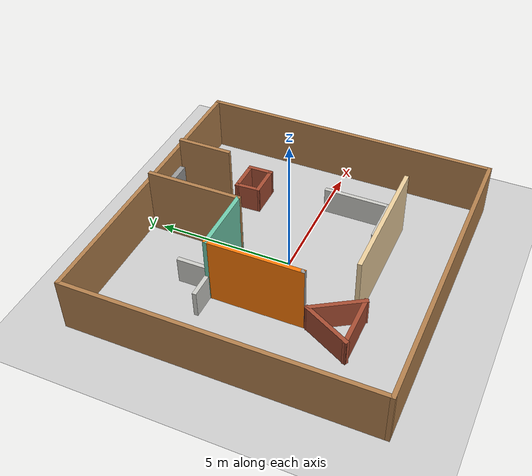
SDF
<sdf version="1.7">
 <world name="default">
  <light name="sun" type="directional">
   <pose>0 0 10 0 -0 0</pose>
   <diffuse>0.8 0.8 0.8 1</diffuse>
   <specular>0.1 0.1 0.1 1</specular>
   <attenuation>
    <range>1000</range>
    <constant>0.9</constant>
    <linear>0.01</linear>
    <quadratic>0.001</quadratic>
   </attenuation>
   <direction>-0.5 0.5 -1</direction>
   <spot><inner_angle>0</inner_angle><outer_angle>0</outer_angle><falloff>0</falloff></spot>
  </light>
  <model name="ground_plane">
   <static>1</static>
   <link name="link">
    <collision name="collision">
     <geometry><plane><normal>0 0 1</normal><size>100 100</size></plane></geometry>
     <surface><friction><ode><mu>100</mu><mu2>50</mu2></ode></friction></surface>
    </collision>
    <visual name="visual">
     <cast_shadows>0</cast_shadows>
     <geometry><plane><normal>0 0 1</normal><size>100 100</size></plane></geometry>
     <material>
      <script><uri>file://media/materials/scripts/gazebo.material</uri><name>Gazebo/Grey</name></script>
     </material>
    </visual>
   </link>
  </model>
  <gravity>0 0 -9.8</gravity>
  <magnetic_field>6e-06 2.3e-05 -4.2e-05</magnetic_field>
  <atmosphere type="adiabatic"/>
  <physics name="default_physics" default="0" type="ode">
   <max_step_size>0.001</max_step_size>
   <real_time_factor>1</real_time_factor>
   <real_time_update_rate>1000</real_time_update_rate>
  </physics>
  <scene><ambient>0.4 0.4 0.4 1</ambient><background>0.7 0.7 0.7 1</background><shadows>1</shadows></scene>
  <spherical_coordinates>
   <surface_model>EARTH_WGS84</surface_model>
   <latitude_deg>0</latitude_deg>
   <longitude_deg>0</longitude_deg>
   <elevation>0</elevation>
   <heading_deg>0</heading_deg>
  </spherical_coordinates>
  <model name="box">
   <link name="Wall_11">
    <pose>-2.152 1.857 0 0 -0 0</pose>
    <visual name="Wall_11_Visual">
     <pose>0 0 0.5 0 -0 0</pose>
     <geometry><box><size>2.5 0.15 1</size></box></geometry>
     <material>
      <script><uri>file://media/materials/scripts/gazebo.material</uri><name>Gazebo/CeilingTiled</name></script>
      <ambient>1 1 1 1</ambient>
      <diffuse>1 1 1 1</diffuse>
      <specular>0 0 0 1</specular>
      <emissive>0 0 0 1</emissive>
     </material>
     <meta><layer>0</layer></meta>
    </visual>
    <collision name="Wall_11_Collision">
     <pose>0 0 0.5 0 -0 0</pose>
     <geometry><box><size>2.5 0.15 1</size></box></geometry>
     <surface>
      <friction>
       <ode><mu>1</mu><mu2>1</mu2><fdir1>0 0 0</fdir1><slip1>0</slip1><slip2>0</slip2></ode>
       <torsional>
        <coefficient>1</coefficient>
        <patch_radius>0</patch_radius>
        <surface_radius>0</surface_radius>
        <use_patch_radius>1</use_patch_radius>
        <ode><slip>0</slip></ode>
       </torsional>
      </friction>
      <bounce><restitution_coefficient>0</restitution_coefficient><threshold>1e+06</threshold></bounce>
      <contact>
       <collide_without_contact>0</collide_without_contact>
       <collide_without_contact_bitmask>1</collide_without_contact_bitmask>
       <collide_bitmask>1</collide_bitmask>
       <ode>
        <soft_cfm>0</soft_cfm>
        <soft_erp>0.2</soft_erp>
        <kp>1e+13</kp>
        <kd>1</kd>
        <max_vel>0.01</max_vel>
        <min_depth>0</min_depth>
       </ode>
       <bullet>
        <split_impulse>1</split_impulse>
        <split_impulse_penetration_threshold>-0.01</split_impulse_penetration_threshold>
        <soft_cfm>0</soft_cfm>
        <soft_erp>0.2</soft_erp>
        <kp>1e+13</kp>
        <kd>1</kd>
       </bullet>
      </contact>
     </surface>
    </collision>
   </link>
   <link name="Wall_13">
    <pose>-2.155 1.764 0 0 0 -1.5708</pose>
    <visual name="Wall_13_Visual">
     <pose>0 0 0.5 0 -0 0</pose>
     <geometry><box><size>2.75 0.15 1</size></box></geometry>
     <material>
      <script><uri>file://media/materials/scripts/gazebo.material</uri><name>Gazebo/CeilingTiled</name></script>
      <ambient>1 1 1 1</ambient>
      <diffuse>1 1 1 1</diffuse>
      <specular>0 0 0 1</specular>
      <emissive>0 0 0 1</emissive>
     </material>
     <meta><layer>0</layer></meta>
    </visual>
    <collision name="Wall_13_Collision">
     <pose>0 0 0.5 0 -0 0</pose>
     <geometry><box><size>2.75 0.15 1</size></box></geometry>
     <surface>
      <friction>
       <ode><mu>1</mu><mu2>1</mu2><fdir1>0 0 0</fdir1><slip1>0</slip1><slip2>0</slip2></ode>
       <torsional>
        <coefficient>1</coefficient>
        <patch_radius>0</patch_radius>
        <surface_radius>0</surface_radius>
        <use_patch_radius>1</use_patch_radius>
        <ode><slip>0</slip></ode>
       </torsional>
      </friction>
      <bounce><restitution_coefficient>0</restitution_coefficient><threshold>1e+06</threshold></bounce>
      <contact>
       <collide_without_contact>0</collide_without_contact>
       <collide_without_contact_bitmask>1</collide_without_contact_bitmask>
       <collide_bitmask>1</collide_bitmask>
       <ode>
        <soft_cfm>0</soft_cfm>
        <soft_erp>0.2</soft_erp>
        <kp>1e+13</kp>
        <kd>1</kd>
        <max_vel>0.01</max_vel>
        <min_depth>0</min_depth>
       </ode>
       <bullet>
        <split_impulse>1</split_impulse>
        <split_impulse_penetration_threshold>-0.01</split_impulse_penetration_threshold>
        <soft_cfm>0</soft_cfm>
        <soft_erp>0.2</soft_erp>
        <kp>1e+13</kp>
        <kd>1</kd>
       </bullet>
      </contact>
     </surface>
    </collision>
   </link>
   <link name="Wall_15">
    <pose>2.724 3.029 0 0 -0 0</pose>
    <visual name="Wall_15_Visual">
     <pose>0 0 0.5 0 -0 0</pose>
     <geometry><box><size>1.2678 0.15 1</size></box></geometry>
     <material>
      <script><uri>file://media/materials/scripts/gazebo.material</uri><name>Gazebo/Bricks</name></script>
      <ambient>1 1 1 1</ambient>
      <diffuse>1 1 1 1</diffuse>
      <specular>0.2 0.2 0.2 1</specular>
      <emissive>0 0 0 1</emissive>
     </material>
     <meta><layer>0</layer></meta>
    </visual>
    <collision name="Wall_15_Collision">
     <pose>0 0 0.5 0 -0 0</pose>
     <geometry><box><size>1.2678 0.15 1</size></box></geometry>
     <surface>
      <friction>
       <ode><mu>1</mu><mu2>1</mu2><fdir1>0 0 0</fdir1><slip1>0</slip1><slip2>0</slip2></ode>
       <torsional>
        <coefficient>1</coefficient>
        <patch_radius>0</patch_radius>
        <surface_radius>0</surface_radius>
        <use_patch_radius>1</use_patch_radius>
        <ode><slip>0</slip></ode>
       </torsional>
      </friction>
      <bounce><restitution_coefficient>0</restitution_coefficient><threshold>1e+06</threshold></bounce>
      <contact>
       <collide_without_contact>0</collide_without_contact>
       <collide_without_contact_bitmask>1</collide_without_contact_bitmask>
       <collide_bitmask>1</collide_bitmask>
       <ode>
        <soft_cfm>0</soft_cfm>
        <soft_erp>0.2</soft_erp>
        <kp>1e+13</kp>
        <kd>1</kd>
        <max_vel>0.01</max_vel>
        <min_depth>0</min_depth>
       </ode>
       <bullet>
        <split_impulse>1</split_impulse>
        <split_impulse_penetration_threshold>-0.01</split_impulse_penetration_threshold>
        <soft_cfm>0</soft_cfm>
        <soft_erp>0.2</soft_erp>
        <kp>1e+13</kp>
        <kd>1</kd>
       </bullet>
      </contact>
     </surface>
    </collision>
   </link>
   <link name="Wall_16">
    <pose>3.2915 2.6215 0 0 0 -1.54994</pose>
    <visual name="Wall_16_Visual">
     <pose>0 0 0.5 0 -0 0</pose>
     <geometry><box><size>0.965005 0.15 1</size></box></geometry>
     <material>
      <script><uri>file://media/materials/scripts/gazebo.material</uri><name>Gazebo/Bricks</name></script>
      <ambient>1 1 1 1</ambient>
      <diffuse>1 1 1 1</diffuse>
      <specular>0.2 0.2 0.2 1</specular>
      <emissive>0 0 0 1</emissive>
     </material>
     <meta><layer>0</layer></meta>
    </visual>
    <collision name="Wall_16_Collision">
     <pose>0 0 0.5 0 -0 0</pose>
     <geometry><box><size>0.965005 0.15 1</size></box></geometry>
     <surface>
      <friction>
       <ode><mu>1</mu><mu2>1</mu2><fdir1>0 0 0</fdir1><slip1>0</slip1><slip2>0</slip2></ode>
       <torsional>
        <coefficient>1</coefficient>
        <patch_radius>0</patch_radius>
        <surface_radius>0</surface_radius>
        <use_patch_radius>1</use_patch_radius>
        <ode><slip>0</slip></ode>
       </torsional>
      </friction>
      <bounce><restitution_coefficient>0</restitution_coefficient><threshold>1e+06</threshold></bounce>
      <contact>
       <collide_without_contact>0</collide_without_contact>
       <collide_without_contact_bitmask>1</collide_without_contact_bitmask>
       <collide_bitmask>1</collide_bitmask>
       <ode>
        <soft_cfm>0</soft_cfm>
        <soft_erp>0.2</soft_erp>
        <kp>1e+13</kp>
        <kd>1</kd>
        <max_vel>0.01</max_vel>
        <min_depth>0</min_depth>
       </ode>
       <bullet>
        <split_impulse>1</split_impulse>
        <split_impulse_penetration_threshold>-0.01</split_impulse_penetration_threshold>
        <soft_cfm>0</soft_cfm>
        <soft_erp>0.2</soft_erp>
        <kp>1e+13</kp>
        <kd>1</kd>
       </bullet>
      </contact>
     </surface>
    </collision>
   </link>
   <link name="Wall_17">
    <pose>2.75 2.214 0 0 -0 3.14159</pose>
    <visual name="Wall_17_Visual">
     <pose>0 0 0.5 0 -0 0</pose>
     <geometry><box><size>1.25 0.15 1</size></box></geometry>
     <material>
      <script><uri>file://media/materials/scripts/gazebo.material</uri><name>Gazebo/Bricks</name></script>
      <ambient>1 1 1 1</ambient>
      <diffuse>1 1 1 1</diffuse>
      <specular>0.2 0.2 0.2 1</specular>
      <emissive>0 0 0 1</emissive>
     </material>
     <meta><layer>0</layer></meta>
    </visual>
    <collision name="Wall_17_Collision">
     <pose>0 0 0.5 0 -0 0</pose>
     <geometry><box><size>1.25 0.15 1</size></box></geometry>
     <surface>
      <friction>
       <ode><mu>1</mu><mu2>1</mu2><fdir1>0 0 0</fdir1><slip1>0</slip1><slip2>0</slip2></ode>
       <torsional>
        <coefficient>1</coefficient>
        <patch_radius>0</patch_radius>
        <surface_radius>0</surface_radius>
        <use_patch_radius>1</use_patch_radius>
        <ode><slip>0</slip></ode>
       </torsional>
      </friction>
      <bounce><restitution_coefficient>0</restitution_coefficient><threshold>1e+06</threshold></bounce>
      <contact>
       <collide_without_contact>0</collide_without_contact>
       <collide_without_contact_bitmask>1</collide_without_contact_bitmask>
       <collide_bitmask>1</collide_bitmask>
       <ode>
        <soft_cfm>0</soft_cfm>
        <soft_erp>0.2</soft_erp>
        <kp>1e+13</kp>
        <kd>1</kd>
        <max_vel>0.01</max_vel>
        <min_depth>0</min_depth>
       </ode>
       <bullet>
        <split_impulse>1</split_impulse>
        <split_impulse_penetration_threshold>-0.01</split_impulse_penetration_threshold>
        <soft_cfm>0</soft_cfm>
        <soft_erp>0.2</soft_erp>
        <kp>1e+13</kp>
        <kd>1</kd>
       </bullet>
      </contact>
     </surface>
    </collision>
   </link>
   <link name="Wall_18">
    <pose>2.1825 2.6215 0 0 -0 1.61372</pose>
    <visual name="Wall_18_Visual">
     <pose>0 0 0.5 0 -0 0</pose>
     <geometry><box><size>0.965005 0.15 1</size></box></geometry>
     <material>
      <script><uri>file://media/materials/scripts/gazebo.material</uri><name>Gazebo/Bricks</name></script>
      <ambient>1 1 1 1</ambient>
      <diffuse>1 1 1 1</diffuse>
      <specular>0.2 0.2 0.2 1</specular>
      <emissive>0 0 0 1</emissive>
     </material>
     <meta><layer>0</layer></meta>
    </visual>
    <collision name="Wall_18_Collision">
     <pose>0 0 0.5 0 -0 0</pose>
     <geometry><box><size>0.965005 0.15 1</size></box></geometry>
     <surface>
      <friction>
       <ode><mu>1</mu><mu2>1</mu2><fdir1>0 0 0</fdir1><slip1>0</slip1><slip2>0</slip2></ode>
       <torsional>
        <coefficient>1</coefficient>
        <patch_radius>0</patch_radius>
        <surface_radius>0</surface_radius>
        <use_patch_radius>1</use_patch_radius>
        <ode><slip>0</slip></ode>
       </torsional>
      </friction>
      <bounce><restitution_coefficient>0</restitution_coefficient><threshold>1e+06</threshold></bounce>
      <contact>
       <collide_without_contact>0</collide_without_contact>
       <collide_without_contact_bitmask>1</collide_without_contact_bitmask>
       <collide_bitmask>1</collide_bitmask>
       <ode>
        <soft_cfm>0</soft_cfm>
        <soft_erp>0.2</soft_erp>
        <kp>1e+13</kp>
        <kd>1</kd>
        <max_vel>0.01</max_vel>
        <min_depth>0</min_depth>
       </ode>
       <bullet>
        <split_impulse>1</split_impulse>
        <split_impulse_penetration_threshold>-0.01</split_impulse_penetration_threshold>
        <soft_cfm>0</soft_cfm>
        <soft_erp>0.2</soft_erp>
        <kp>1e+13</kp>
        <kd>1</kd>
       </bullet>
      </contact>
     </surface>
    </collision>
   </link>
   <link name="Wall_24">
    <pose>-2.89576 -2.49088 0 0 -0 1.09459</pose>
    <visual name="Wall_24_Visual">
     <pose>0 0 0.5 0 -0 0</pose>
     <geometry><box><size>1.97704 0.15 1</size></box></geometry>
     <material>
      <script><uri>file://media/materials/scripts/gazebo.material</uri><name>Gazebo/Bricks</name></script>
      <ambient>1 1 1 1</ambient>
      <diffuse>1 1 1 1</diffuse>
      <specular>0.2 0.2 0.2 1</specular>
      <emissive>0 0 0 1</emissive>
     </material>
     <meta><layer>0</layer></meta>
    </visual>
    <collision name="Wall_24_Collision">
     <pose>0 0 0.5 0 -0 0</pose>
     <geometry><box><size>1.97704 0.15 1</size></box></geometry>
     <surface>
      <friction>
       <ode><mu>1</mu><mu2>1</mu2><fdir1>0 0 0</fdir1><slip1>0</slip1><slip2>0</slip2></ode>
       <torsional>
        <coefficient>1</coefficient>
        <patch_radius>0</patch_radius>
        <surface_radius>0</surface_radius>
        <use_patch_radius>1</use_patch_radius>
        <ode><slip>0</slip></ode>
       </torsional>
      </friction>
      <bounce><restitution_coefficient>0</restitution_coefficient><threshold>1e+06</threshold></bounce>
      <contact>
       <collide_without_contact>0</collide_without_contact>
       <collide_without_contact_bitmask>1</collide_without_contact_bitmask>
       <collide_bitmask>1</collide_bitmask>
       <ode>
        <soft_cfm>0</soft_cfm>
        <soft_erp>0.2</soft_erp>
        <kp>1e+13</kp>
        <kd>1</kd>
        <max_vel>0.01</max_vel>
        <min_depth>0</min_depth>
       </ode>
       <bullet>
        <split_impulse>1</split_impulse>
        <split_impulse_penetration_threshold>-0.01</split_impulse_penetration_threshold>
        <soft_cfm>0</soft_cfm>
        <soft_erp>0.2</soft_erp>
        <kp>1e+13</kp>
        <kd>1</kd>
       </bullet>
      </contact>
     </surface>
    </collision>
   </link>
   <link name="Wall_25">
    <pose>-1.97077 -2.49088 0 0 0 -1.01325</pose>
    <visual name="Wall_25_Visual">
     <pose>0 0 0.5 0 -0 0</pose>
     <geometry><box><size>2.06356 0.15 1</size></box></geometry>
     <material>
      <script><uri>file://media/materials/scripts/gazebo.material</uri><name>Gazebo/Bricks</name></script>
      <ambient>1 1 1 1</ambient>
      <diffuse>1 1 1 1</diffuse>
      <specular>0.2 0.2 0.2 1</specular>
      <emissive>0 0 0 1</emissive>
     </material>
     <meta><layer>0</layer></meta>
    </visual>
    <collision name="Wall_25_Collision">
     <pose>0 0 0.5 0 -0 0</pose>
     <geometry><box><size>2.06356 0.15 1</size></box></geometry>
     <surface>
      <friction>
       <ode><mu>1</mu><mu2>1</mu2><fdir1>0 0 0</fdir1><slip1>0</slip1><slip2>0</slip2></ode>
       <torsional>
        <coefficient>1</coefficient>
        <patch_radius>0</patch_radius>
        <surface_radius>0</surface_radius>
        <use_patch_radius>1</use_patch_radius>
        <ode><slip>0</slip></ode>
       </torsional>
      </friction>
      <bounce><restitution_coefficient>0</restitution_coefficient><threshold>1e+06</threshold></bounce>
      <contact>
       <collide_without_contact>0</collide_without_contact>
       <collide_without_contact_bitmask>1</collide_without_contact_bitmask>
       <collide_bitmask>1</collide_bitmask>
       <ode>
        <soft_cfm>0</soft_cfm>
        <soft_erp>0.2</soft_erp>
        <kp>1e+13</kp>
        <kd>1</kd>
        <max_vel>0.01</max_vel>
        <min_depth>0</min_depth>
       </ode>
       <bullet>
        <split_impulse>1</split_impulse>
        <split_impulse_penetration_threshold>-0.01</split_impulse_penetration_threshold>
        <soft_cfm>0</soft_cfm>
        <soft_erp>0.2</soft_erp>
        <kp>1e+13</kp>
        <kd>1</kd>
       </bullet>
      </contact>
     </surface>
    </collision>
   </link>
   <link name="Wall_26">
    <pose>-2.38953 -3.28527 0 0 -0 3.14159</pose>
    <visual name="Wall_26_Visual">
     <pose>0 0 0.5 0 -0 0</pose>
     <geometry><box><size>2 0.15 1</size></box></geometry>
     <material>
      <script><uri>file://media/materials/scripts/gazebo.material</uri><name>Gazebo/Bricks</name></script>
      <ambient>1 1 1 1</ambient>
      <diffuse>1 1 1 1</diffuse>
      <specular>0.2 0.2 0.2 1</specular>
      <emissive>0 0 0 1</emissive>
     </material>
     <meta><layer>0</layer></meta>
    </visual>
    <collision name="Wall_26_Collision">
     <pose>0 0 0.5 0 -0 0</pose>
     <geometry><box><size>2 0.15 1</size></box></geometry>
     <surface>
      <friction>
       <ode><mu>1</mu><mu2>1</mu2><fdir1>0 0 0</fdir1><slip1>0</slip1><slip2>0</slip2></ode>
       <torsional>
        <coefficient>1</coefficient>
        <patch_radius>0</patch_radius>
        <surface_radius>0</surface_radius>
        <use_patch_radius>1</use_patch_radius>
        <ode><slip>0</slip></ode>
       </torsional>
      </friction>
      <bounce><restitution_coefficient>0</restitution_coefficient><threshold>1e+06</threshold></bounce>
      <contact>
       <collide_without_contact>0</collide_without_contact>
       <collide_without_contact_bitmask>1</collide_without_contact_bitmask>
       <collide_bitmask>1</collide_bitmask>
       <ode>
        <soft_cfm>0</soft_cfm>
        <soft_erp>0.2</soft_erp>
        <kp>1e+13</kp>
        <kd>1</kd>
        <max_vel>0.01</max_vel>
        <min_depth>0</min_depth>
       </ode>
       <bullet>
        <split_impulse>1</split_impulse>
        <split_impulse_penetration_threshold>-0.01</split_impulse_penetration_threshold>
        <soft_cfm>0</soft_cfm>
        <soft_erp>0.2</soft_erp>
        <kp>1e+13</kp>
        <kd>1</kd>
       </bullet>
      </contact>
     </surface>
    </collision>
   </link>
   <link name="Wall_28">
    <pose>2.38813 -2.48047 0 0 -0 0</pose>
    <visual name="Wall_28_Visual">
     <pose>0 0 0.5 0 -0 0</pose>
     <geometry><box><size>1.75 0.15 1</size></box></geometry>
     <material>
      <script><uri>file://media/materials/scripts/gazebo.material</uri><name>Gazebo/CeilingTiled</name></script>
      <ambient>1 1 1 1</ambient>
      <diffuse>1 1 1 1</diffuse>
      <specular>0 0 0 1</specular>
      <emissive>0 0 0 1</emissive>
     </material>
     <meta><layer>0</layer></meta>
    </visual>
    <collision name="Wall_28_Collision">
     <pose>0 0 0.5 0 -0 0</pose>
     <geometry><box><size>1.75 0.15 1</size></box></geometry>
     <surface>
      <friction>
       <ode><mu>1</mu><mu2>1</mu2><fdir1>0 0 0</fdir1><slip1>0</slip1><slip2>0</slip2></ode>
       <torsional>
        <coefficient>1</coefficient>
        <patch_radius>0</patch_radius>
        <surface_radius>0</surface_radius>
        <use_patch_radius>1</use_patch_radius>
        <ode><slip>0</slip></ode>
       </torsional>
      </friction>
      <bounce><restitution_coefficient>0</restitution_coefficient><threshold>1e+06</threshold></bounce>
      <contact>
       <collide_without_contact>0</collide_without_contact>
       <collide_without_contact_bitmask>1</collide_without_contact_bitmask>
       <collide_bitmask>1</collide_bitmask>
       <ode>
        <soft_cfm>0</soft_cfm>
        <soft_erp>0.2</soft_erp>
        <kp>1e+13</kp>
        <kd>1</kd>
        <max_vel>0.01</max_vel>
        <min_depth>0</min_depth>
       </ode>
       <bullet>
        <split_impulse>1</split_impulse>
        <split_impulse_penetration_threshold>-0.01</split_impulse_penetration_threshold>
        <soft_cfm>0</soft_cfm>
        <soft_erp>0.2</soft_erp>
        <kp>1e+13</kp>
        <kd>1</kd>
       </bullet>
      </contact>
     </surface>
    </collision>
   </link>
   <link name="Wall_29">
    <pose>3.20562 -1.28798 0 0 -0 1.5708</pose>
    <visual name="Wall_29_Visual">
     <pose>0 0 0.5 0 -0 0</pose>
     <geometry><box><size>2.5 0.15 1</size></box></geometry>
     <material>
      <script><uri>file://media/materials/scripts/gazebo.material</uri><name>Gazebo/CeilingTiled</name></script>
      <ambient>1 1 1 1</ambient>
      <diffuse>1 1 1 1</diffuse>
      <specular>0 0 0 1</specular>
      <emissive>0 0 0 1</emissive>
     </material>
     <meta><layer>0</layer></meta>
    </visual>
    <collision name="Wall_29_Collision">
     <pose>0 0 0.5 0 -0 0</pose>
     <geometry><box><size>2.5 0.15 1</size></box></geometry>
     <surface>
      <friction>
       <ode><mu>1</mu><mu2>1</mu2><fdir1>0 0 0</fdir1><slip1>0</slip1><slip2>0</slip2></ode>
       <torsional>
        <coefficient>1</coefficient>
        <patch_radius>0</patch_radius>
        <surface_radius>0</surface_radius>
        <use_patch_radius>1</use_patch_radius>
        <ode><slip>0</slip></ode>
       </torsional>
      </friction>
      <bounce><restitution_coefficient>0</restitution_coefficient><threshold>1e+06</threshold></bounce>
      <contact>
       <collide_without_contact>0</collide_without_contact>
       <collide_without_contact_bitmask>1</collide_without_contact_bitmask>
       <collide_bitmask>1</collide_bitmask>
       <ode>
        <soft_cfm>0</soft_cfm>
        <soft_erp>0.2</soft_erp>
        <kp>1e+13</kp>
        <kd>1</kd>
        <max_vel>0.01</max_vel>
        <min_depth>0</min_depth>
       </ode>
       <bullet>
        <split_impulse>1</split_impulse>
        <split_impulse_penetration_threshold>-0.01</split_impulse_penetration_threshold>
        <soft_cfm>0</soft_cfm>
        <soft_erp>0.2</soft_erp>
        <kp>1e+13</kp>
        <kd>1</kd>
       </bullet>
      </contact>
     </surface>
    </collision>
   </link>
   <link name="Wall_6">
    <pose>0 5.425 0 0 -0 0</pose>
    <visual name="Wall_6_Visual">
     <pose>0 0 1 0 -0 0</pose>
     <geometry><box><size>11 0.15 2</size></box></geometry>
     <material>
      <script><uri>file://media/materials/scripts/gazebo.material</uri><name>Gazebo/Wood</name></script>
      <ambient>1 1 1 1</ambient>
      <diffuse>1 1 1 1</diffuse>
      <specular>0.2 0.2 0.2 1</specular>
      <emissive>0 0 0 1</emissive>
     </material>
     <meta><layer>0</layer></meta>
    </visual>
    <collision name="Wall_6_Collision">
     <pose>0 0 1 0 -0 0</pose>
     <geometry><box><size>11 0.15 2</size></box></geometry>
     <surface>
      <friction>
       <ode><mu>1</mu><mu2>1</mu2><fdir1>0 0 0</fdir1><slip1>0</slip1><slip2>0</slip2></ode>
       <torsional>
        <coefficient>1</coefficient>
        <patch_radius>0</patch_radius>
        <surface_radius>0</surface_radius>
        <use_patch_radius>1</use_patch_radius>
        <ode><slip>0</slip></ode>
       </torsional>
      </friction>
      <bounce><restitution_coefficient>0</restitution_coefficient><threshold>1e+06</threshold></bounce>
      <contact>
       <collide_without_contact>0</collide_without_contact>
       <collide_without_contact_bitmask>1</collide_without_contact_bitmask>
       <collide_bitmask>1</collide_bitmask>
       <ode>
        <soft_cfm>0</soft_cfm>
        <soft_erp>0.2</soft_erp>
        <kp>1e+13</kp>
        <kd>1</kd>
        <max_vel>0.01</max_vel>
        <min_depth>0</min_depth>
       </ode>
       <bullet>
        <split_impulse>1</split_impulse>
        <split_impulse_penetration_threshold>-0.01</split_impulse_penetration_threshold>
        <soft_cfm>0</soft_cfm>
        <soft_erp>0.2</soft_erp>
        <kp>1e+13</kp>
        <kd>1</kd>
       </bullet>
      </contact>
     </surface>
    </collision>
   </link>
   <link name="Wall_7">
    <pose>5.425 0 0 0 0 -1.5708</pose>
    <visual name="Wall_7_Visual">
     <pose>0 0 1 0 -0 0</pose>
     <geometry><box><size>11 0.15 2</size></box></geometry>
     <material>
      <script><uri>file://media/materials/scripts/gazebo.material</uri><name>Gazebo/Wood</name></script>
      <ambient>1 1 1 1</ambient>
      <diffuse>1 1 1 1</diffuse>
      <specular>0.2 0.2 0.2 1</specular>
      <emissive>0 0 0 1</emissive>
     </material>
     <meta><layer>0</layer></meta>
    </visual>
    <collision name="Wall_7_Collision">
     <pose>0 0 1 0 -0 0</pose>
     <geometry><box><size>11 0.15 2</size></box></geometry>
     <surface>
      <friction>
       <ode><mu>1</mu><mu2>1</mu2><fdir1>0 0 0</fdir1><slip1>0</slip1><slip2>0</slip2></ode>
       <torsional>
        <coefficient>1</coefficient>
        <patch_radius>0</patch_radius>
        <surface_radius>0</surface_radius>
        <use_patch_radius>1</use_patch_radius>
        <ode><slip>0</slip></ode>
       </torsional>
      </friction>
      <bounce><restitution_coefficient>0</restitution_coefficient><threshold>1e+06</threshold></bounce>
      <contact>
       <collide_without_contact>0</collide_without_contact>
       <collide_without_contact_bitmask>1</collide_without_contact_bitmask>
       <collide_bitmask>1</collide_bitmask>
       <ode>
        <soft_cfm>0</soft_cfm>
        <soft_erp>0.2</soft_erp>
        <kp>1e+13</kp>
        <kd>1</kd>
        <max_vel>0.01</max_vel>
        <min_depth>0</min_depth>
       </ode>
       <bullet>
        <split_impulse>1</split_impulse>
        <split_impulse_penetration_threshold>-0.01</split_impulse_penetration_threshold>
        <soft_cfm>0</soft_cfm>
        <soft_erp>0.2</soft_erp>
        <kp>1e+13</kp>
        <kd>1</kd>
       </bullet>
      </contact>
     </surface>
    </collision>
   </link>
   <link name="Wall_8">
    <pose>0 -5.425 0 0 -0 3.14159</pose>
    <visual name="Wall_8_Visual">
     <pose>0 0 1 0 -0 0</pose>
     <geometry><box><size>11 0.15 2</size></box></geometry>
     <material>
      <script><uri>file://media/materials/scripts/gazebo.material</uri><name>Gazebo/Wood</name></script>
      <ambient>1 1 1 1</ambient>
      <diffuse>1 1 1 1</diffuse>
      <specular>0.2 0.2 0.2 1</specular>
      <emissive>0 0 0 1</emissive>
     </material>
     <meta><layer>0</layer></meta>
    </visual>
    <collision name="Wall_8_Collision">
     <pose>0 0 1 0 -0 0</pose>
     <geometry><box><size>11 0.15 2</size></box></geometry>
     <surface>
      <friction>
       <ode><mu>1</mu><mu2>1</mu2><fdir1>0 0 0</fdir1><slip1>0</slip1><slip2>0</slip2></ode>
       <torsional>
        <coefficient>1</coefficient>
        <patch_radius>0</patch_radius>
        <surface_radius>0</surface_radius>
        <use_patch_radius>1</use_patch_radius>
        <ode><slip>0</slip></ode>
       </torsional>
      </friction>
      <bounce><restitution_coefficient>0</restitution_coefficient><threshold>1e+06</threshold></bounce>
      <contact>
       <collide_without_contact>0</collide_without_contact>
       <collide_without_contact_bitmask>1</collide_without_contact_bitmask>
       <collide_bitmask>1</collide_bitmask>
       <ode>
        <soft_cfm>0</soft_cfm>
        <soft_erp>0.2</soft_erp>
        <kp>1e+13</kp>
        <kd>1</kd>
        <max_vel>0.01</max_vel>
        <min_depth>0</min_depth>
       </ode>
       <bullet>
        <split_impulse>1</split_impulse>
        <split_impulse_penetration_threshold>-0.01</split_impulse_penetration_threshold>
        <soft_cfm>0</soft_cfm>
        <soft_erp>0.2</soft_erp>
        <kp>1e+13</kp>
        <kd>1</kd>
       </bullet>
      </contact>
     </surface>
    </collision>
   </link>
   <link name="Wall_9">
    <pose>-5.425 0 0 0 -0 1.5708</pose>
    <visual name="Wall_9_Visual">
     <pose>0 0 1 0 -0 0</pose>
     <geometry><box><size>11 0.15 2</size></box></geometry>
     <material>
      <script><uri>file://media/materials/scripts/gazebo.material</uri><name>Gazebo/Wood</name></script>
      <ambient>1 1 1 1</ambient>
      <diffuse>1 1 1 1</diffuse>
      <specular>0.2 0.2 0.2 1</specular>
      <emissive>0 0 0 1</emissive>
     </material>
     <meta><layer>0</layer></meta>
    </visual>
    <collision name="Wall_9_Collision">
     <pose>0 0 1 0 -0 0</pose>
     <geometry><box><size>11 0.15 2</size></box></geometry>
     <surface>
      <friction>
       <ode><mu>1</mu><mu2>1</mu2><fdir1>0 0 0</fdir1><slip1>0</slip1><slip2>0</slip2></ode>
       <torsional>
        <coefficient>1</coefficient>
        <patch_radius>0</patch_radius>
        <surface_radius>0</surface_radius>
        <use_patch_radius>1</use_patch_radius>
        <ode><slip>0</slip></ode>
       </torsional>
      </friction>
      <bounce><restitution_coefficient>0</restitution_coefficient><threshold>1e+06</threshold></bounce>
      <contact>
       <collide_without_contact>0</collide_without_contact>
       <collide_without_contact_bitmask>1</collide_without_contact_bitmask>
       <collide_bitmask>1</collide_bitmask>
       <ode>
        <soft_cfm>0</soft_cfm>
        <soft_erp>0.2</soft_erp>
        <kp>1e+13</kp>
        <kd>1</kd>
        <max_vel>0.01</max_vel>
        <min_depth>0</min_depth>
       </ode>
       <bullet>
        <split_impulse>1</split_impulse>
        <split_impulse_penetration_threshold>-0.01</split_impulse_penetration_threshold>
        <soft_cfm>0</soft_cfm>
        <soft_erp>0.2</soft_erp>
        <kp>1e+13</kp>
        <kd>1</kd>
       </bullet>
      </contact>
     </surface>
    </collision>
   </link>
   <static>1</static>
   <pose>0.00056 -0.00012 0 0 -0 0</pose>
  </model>
  <model name="maze-v1.1">
   <pose>0.362146 1.09565 0 0 -0 0</pose>
   <link name="Wall_1">
    <collision name="Wall_1_Collision">
     <geometry><box><size>3.5 0.15 2.5</size></box></geometry>
     <pose>0 0 1.25 0 -0 0</pose>
    </collision>
    <visual name="Wall_1_Visual">
     <pose>0 0 1.25 0 -0 0</pose>
     <geometry><box><size>3.5 0.15 2.5</size></box></geometry>
     <material>
      <script><uri>file://media/materials/scripts/gazebo.material</uri><name>Gazebo/Wood</name></script>
      <ambient>1 1 1 1</ambient>
     </material>
     <meta><layer>0</layer></meta>
    </visual>
    <pose>-0.458262 2.41087 0 0 -0 -1.5708</pose>
   </link>
   <link name="Wall_11">
    <collision name="Wall_11_Collision">
     <geometry><box><size>2 0.15 2.5</size></box></geometry>
     <pose>0 0 1.25 0 -0 0</pose>
    </collision>
    <visual name="Wall_11_Visual">
     <pose>0 0 1.25 0 -0 0</pose>
     <geometry><box><size>2 0.15 2.5</size></box></geometry>
     <material>
      <script><uri>file://media/materials/scripts/gazebo.material</uri><name>Gazebo/Wood</name></script>
      <ambient>1 1 1 1</ambient>
     </material>
     <meta><layer>0</layer></meta>
    </visual>
    <pose>1.66975 3.10767 0 0 -0 -1.5708</pose>
   </link>
   <link name="Wall_5">
    <collision name="Wall_5_Collision">
     <geometry><box><size>2.5 0.15 2.5</size></box></geometry>
     <pose>0 0 1.25 0 -0 0</pose>
    </collision>
    <visual name="Wall_5_Visual">
     <pose>0 0 1.25 0 -0 0</pose>
     <geometry><box><size>2.5 0.15 2.5</size></box></geometry>
     <material>
      <script><uri>file://media/materials/scripts/gazebo.material</uri><name>Gazebo/Grey</name></script>
      <ambient>0.435294 0.796078 0.67451 1</ambient>
     </material>
     <meta><layer>0</layer></meta>
    </visual>
    <pose>-1.63326 0.735873 0 0 -0 3.14159</pose>
   </link>
   <link name="Wall_6">
    <collision name="Wall_6_Collision">
     <geometry><box><size>3.5 0.15 2.5</size></box></geometry>
     <pose>0 0 1.25 0 -0 0</pose>
    </collision>
    <visual name="Wall_6_Visual">
     <pose>0 0 1.25 0 -0 0</pose>
     <geometry><box><size>3.5 0.15 2.5</size></box></geometry>
     <material>
      <script><uri>file://media/materials/scripts/gazebo.material</uri><name>Gazebo/Grey</name></script>
      <ambient>0.996078 0.47451 0.0196078 1</ambient>
     </material>
     <meta><layer>0</layer></meta>
    </visual>
    <pose>-2.80826 -0.939127 0 0 -0 -1.5708</pose>
   </link>
   <link name="Wall_7">
    <collision name="Wall_7_Collision">
     <geometry><box><size>0.15 0.15 2.5</size></box></geometry>
     <pose>0 0 1.25 0 -0 0</pose>
    </collision>
    <visual name="Wall_7_Visual">
     <pose>0 0 1.25 0 -0 0</pose>
     <geometry><box><size>0.15 0.15 2.5</size></box></geometry>
     <material>
      <script><uri>file://media/materials/scripts/gazebo.material</uri><name>Gazebo/Grey</name></script>
      <ambient>1 1 1 1</ambient>
     </material>
     <meta><layer>0</layer></meta>
    </visual>
    <pose>-2.80826 -2.61413 0 0 -0 0</pose>
   </link>
   <link name="Wall_9">
    <collision name="Wall_9_Collision">
     <geometry><box><size>4.75 0.15 2.5</size></box></geometry>
     <pose>0 0 1.25 0 -0 0</pose>
    </collision>
    <visual name="Wall_9_Visual">
     <pose>0 0 1.25 0 -0 0</pose>
     <geometry><box><size>4.75 0.15 2.5</size></box></geometry>
     <material>
      <script><uri>file://media/materials/scripts/gazebo.material</uri><name>Gazebo/Grey</name></script>
      <ambient>0.921569 0.807843 0.615686 1</ambient>
     </material>
     <meta><layer>0</layer></meta>
    </visual>
    <pose>0.508263 -4.08587 0 0 -0 0</pose>
   </link>
   <link name="Window_7">
    <collision name="Window_7_Collision">
     <geometry><box><size>1.91721 0.2 0.8</size></box></geometry>
     <pose>0 0 0.4 0 -0 0</pose>
    </collision>
    <visual name="Window_7_Visual">
     <pose>0 0 0.4 0 -0 0</pose>
     <geometry><box><size>1.91721 0.2 0.8</size></box></geometry>
     <material>
      <script><uri>file://media/materials/scripts/gazebo.material</uri><name>Gazebo/Grey</name></script>
     </material>
    </visual>
    <pose>0.632346 4.08587 0.5 0 -0 0</pose>
   </link>
   <static>1</static>
  </model>
 </world>
</sdf>
